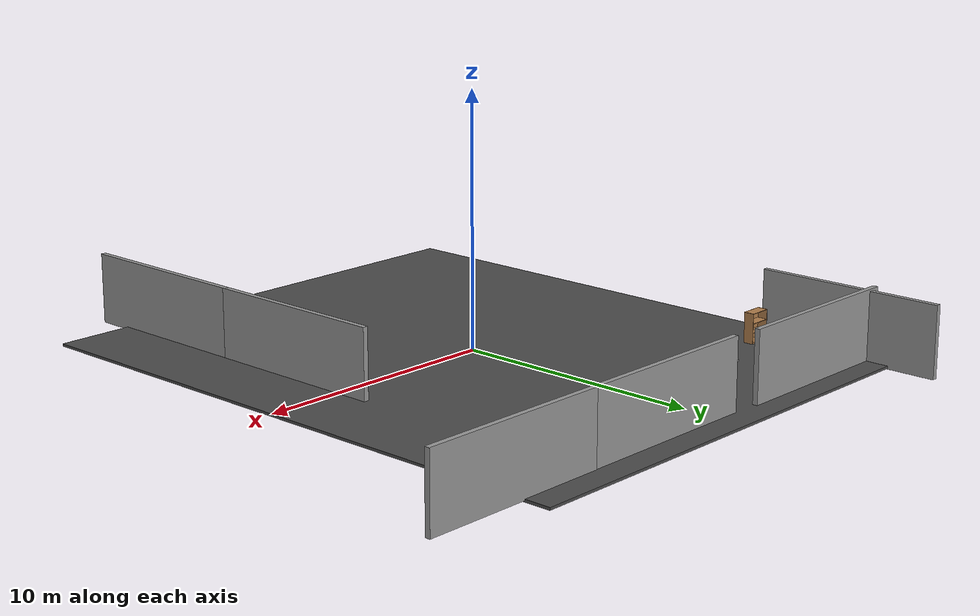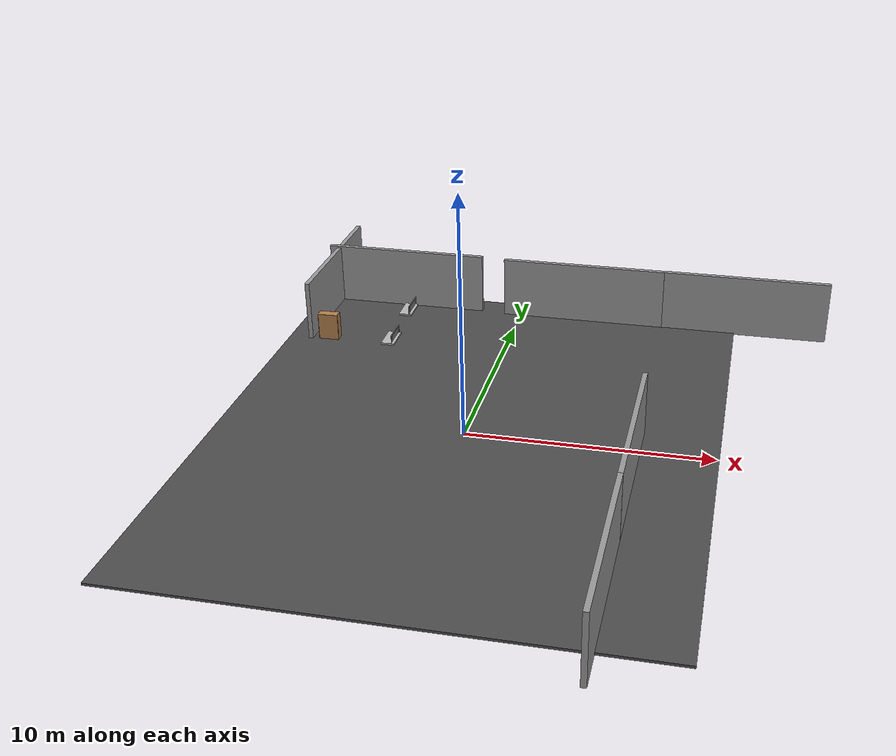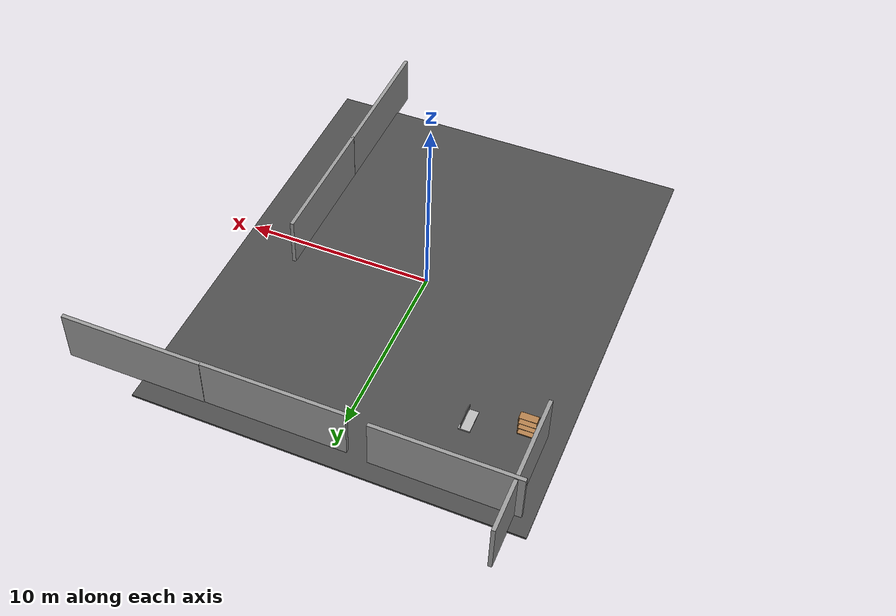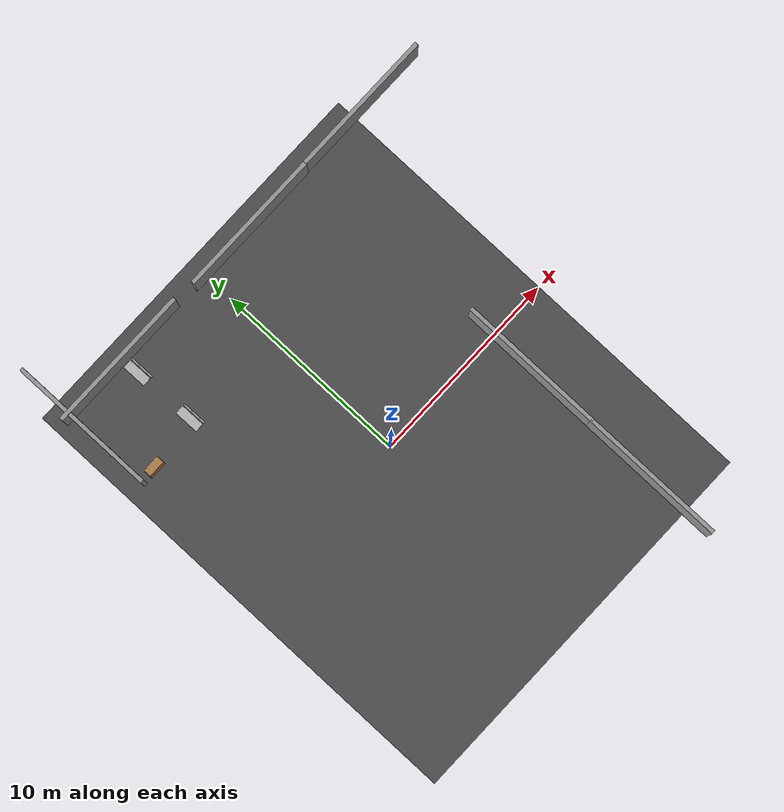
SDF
<sdf version="1.6">
 <world name="default">
  <light name="sun" type="directional">
   <pose>0 0 10 0 -0 0</pose>
   <diffuse>0.8 0.8 0.8 1</diffuse>
   <specular>0.1 0.1 0.1 1</specular>
   <attenuation>
    <range>1000</range>
    <constant>0.9</constant>
    <linear>0.01</linear>
    <quadratic>0.001</quadratic>
   </attenuation>
   <direction>-0.5 0.5 -1</direction>
  </light>
  <gravity>0 0 -9.8</gravity>
  <magnetic_field>6e-06 2.3e-05 -4.2e-05</magnetic_field>
  <atmosphere type="adiabatic"/>
  <physics name="default_physics" default="0" type="ode">
   <max_step_size>0.001</max_step_size>
   <real_time_factor>1</real_time_factor>
   <real_time_update_rate>1000</real_time_update_rate>
  </physics>
  <scene><ambient>0.4 0.4 0.4 1</ambient><background>0.7 0.7 0.7 1</background><shadows>1</shadows></scene>
  <spherical_coordinates>
   <surface_model>EARTH_WGS84</surface_model>
   <latitude_deg>0</latitude_deg>
   <longitude_deg>0</longitude_deg>
   <elevation>0</elevation>
   <heading_deg>0</heading_deg>
  </spherical_coordinates>
  <model name="asphalt_plane">
   <static>1</static>
   <link name="link">
    <collision name="collision"><geometry><box><size>20 24.57 0.1</size></box></geometry></collision>
    <visual name="visual">
     <cast_shadows>0</cast_shadows>
     <geometry><box><size>20 24.57 0.1</size></box></geometry>
     <material>
      <script>
       <uri>model://asphalt_plane/materials/scripts</uri>
       <uri>model://asphalt_plane/materials/textures</uri>
       <name>vrc/asphalt</name>
      </script>
     </material>
    </visual>
   </link>
   <pose>0.062111 0.331905 0 0 -0 0</pose>
  </model>
  <model name="grey_wall">
   <static>1</static>
   <link name="link">
    <pose>0 0 1.4 0 -0 0</pose>
    <collision name="collision"><geometry><box><size>7.5 0.2 2.8</size></box></geometry></collision>
    <visual name="visual">
     <cast_shadows>0</cast_shadows>
     <geometry><box><size>7.5 0.2 2.8</size></box></geometry>
     <material>
      <script>
       <uri>model://grey_wall/materials/scripts</uri>
       <uri>model://grey_wall/materials/textures</uri>
       <name>vrc/grey_wall</name>
      </script>
     </material>
    </visual>
   </link>
   <pose>-5.63183 11.6078 0 0 -0 0</pose>
  </model>
  <model name="grey_wall_0">
   <static>1</static>
   <link name="link">
    <pose>0 0 1.4 0 -0 0</pose>
    <collision name="collision"><geometry><box><size>7.5 0.2 2.8</size></box></geometry></collision>
    <visual name="visual">
     <cast_shadows>0</cast_shadows>
     <geometry><box><size>7.5 0.2 2.8</size></box></geometry>
     <material>
      <script>
       <uri>model://grey_wall/materials/scripts</uri>
       <uri>model://grey_wall/materials/textures</uri>
       <name>vrc/grey_wall</name>
      </script>
     </material>
    </visual>
   </link>
   <pose>-8.93334 10.7602 -0.07277 0 -0 1.57198</pose>
  </model>
  <model name="grey_wall_clone">
   <static>1</static>
   <link name="link">
    <pose>0 0 1.4 0 -0 0</pose>
    <collision name="collision"><geometry><box><size>7.5 0.2 2.8</size></box></geometry></collision>
    <visual name="visual">
     <cast_shadows>0</cast_shadows>
     <geometry><box><size>7.5 0.2 2.8</size></box></geometry>
     <material>
      <script>
       <uri>model://grey_wall/materials/scripts</uri>
       <uri>model://grey_wall/materials/textures</uri>
       <name>vrc/grey_wall</name>
      </script>
     </material>
    </visual>
   </link>
   <pose>2.95671 11.4917 0 0 -0 0</pose>
  </model>
  <model name="grey_wall_clone_0">
   <static>1</static>
   <link name="link">
    <pose>0 0 1.4 0 -0 0</pose>
    <collision name="collision"><geometry><box><size>7.5 0.2 2.8</size></box></geometry></collision>
    <visual name="visual">
     <cast_shadows>0</cast_shadows>
     <geometry><box><size>7.5 0.2 2.8</size></box></geometry>
     <material>
      <script>
       <uri>model://grey_wall/materials/scripts</uri>
       <uri>model://grey_wall/materials/textures</uri>
       <name>vrc/grey_wall</name>
      </script>
     </material>
    </visual>
   </link>
   <pose>10.4161 11.5119 0 0 -0 0</pose>
  </model>
  <model name="grey_wall_clone_0_clone">
   <static>1</static>
   <link name="link">
    <pose>0 0 1.4 0 -0 0</pose>
    <collision name="collision"><geometry><box><size>7.5 0.2 2.8</size></box></geometry></collision>
    <visual name="visual">
     <cast_shadows>0</cast_shadows>
     <geometry><box><size>7.5 0.2 2.8</size></box></geometry>
     <material>
      <script>
       <uri>model://grey_wall/materials/scripts</uri>
       <uri>model://grey_wall/materials/textures</uri>
       <name>vrc/grey_wall</name>
      </script>
     </material>
    </visual>
   </link>
   <pose>6.92346 -2.30034 -0.05478 0 0 -1.57273</pose>
  </model>
  <model name="grey_wall_clone_0_clone_clone">
   <static>1</static>
   <link name="link">
    <pose>0 0 1.4 0 -0 0</pose>
    <collision name="collision"><geometry><box><size>7.5 0.2 2.8</size></box></geometry></collision>
    <visual name="visual">
     <cast_shadows>0</cast_shadows>
     <geometry><box><size>7.5 0.2 2.8</size></box></geometry>
     <material>
      <script>
       <uri>model://grey_wall/materials/scripts</uri>
       <uri>model://grey_wall/materials/textures</uri>
       <name>vrc/grey_wall</name>
      </script>
     </material>
    </visual>
   </link>
   <pose>6.90602 -9.69741 -0.05478 0 0 -1.57273</pose>
  </model>
  <model name="frc2016_lowbar">
   <link name="base">
    <inertial>
     <mass>50</mass>
     <inertia>
      <ixx>0.035543</ixx>
      <ixy>0</ixy>
      <ixz>0</ixz>
      <iyy>0.134412</iyy>
      <iyz>0</iyz>
      <izz>0.165376</izz>
     </inertia>
    </inertial>
    <visual name="platform">
     <pose>0 0 0.039065 0 -0 0</pose>
     <geometry><box><size>1.26 0.5996 0.07813</size></box></geometry>
    </visual>
    <collision name="platform">
     <pose>0 0 0.039065 0 -0 0</pose>
     <geometry><box><size>1.27 0.6096 0.07813</size></box></geometry>
    </collision>
    <visual name="right_column">
     <pose>-0.57845 -0.18464 0.26863 0 -0 0</pose>
     <geometry><cylinder><radius>0.0254</radius><length>0.381</length></cylinder></geometry>
    </visual>
    <collision name="right_column">
     <pose>-0.57845 -0.18464 0.26863 0 -0 0</pose>
     <geometry><cylinder><radius>0.0254</radius><length>0.381</length></cylinder></geometry>
    </collision>
    <visual name="left_column">
     <pose>0.57845 -0.18464 0.26863 0 -0 0</pose>
     <geometry><cylinder><radius>0.0254</radius><length>0.381</length></cylinder></geometry>
    </visual>
    <collision name="left_column">
     <pose>0.57845 -0.18464 0.26863 0 -0 0</pose>
     <geometry><cylinder><radius>0.0254</radius><length>0.381</length></cylinder></geometry>
    </collision>
    <visual name="horizontal">
     <pose>0 -0.18464 0.43556 0 1.5707 0</pose>
     <geometry><cylinder><radius>0.0254</radius><length>1.2018</length></cylinder></geometry>
    </visual>
    <collision name="horizontal">
     <pose>0 -0.18464 0.43556 0 1.5707 0</pose>
     <geometry><cylinder><radius>0.0254</radius><length>1.2018</length></cylinder></geometry>
    </collision>
   </link>
   <link name="wall">
    <pose>0 -0.1778 0.24323 0 -0 0</pose>
    <inertial>
     <mass>1</mass>
     <inertia>
      <ixx>0.00774528</ixx>
      <ixy>0</ixy>
      <ixz>0</ixz>
      <iyy>0.116613</iyy>
      <iyz>0</iyz>
      <izz>0.108874</izz>
     </inertia>
    </inertial>
    <visual name="visual">
     <geometry><box><size>1.1176 0.00635 0.3</size></box></geometry>
     <material><ambient>0.46 0.46 0.46 1</ambient><diffuse>0.46 0.46 0.46 1</diffuse></material>
    </visual>
    <collision name="collision"><geometry><box><size>1.143 0.00635 0.3</size></box></geometry></collision>
   </link>
   <joint name="bar_joint" type="revolute">
    <pose>0 0 0.36378 0 -0 0</pose>
    <parent>base</parent>
    <child>wall</child>
    <axis>
     <xyz>1 0 0</xyz>
     <limit><lower>-1.5707</lower><upper>1.5707</upper></limit>
     <use_parent_model_frame>0</use_parent_model_frame>
     <dynamics><spring_reference>0</spring_reference><spring_stiffness>0</spring_stiffness></dynamics>
    </axis>
   </joint>
   <pose>-5.28663 7.63661 0.049992 7e-06 -2.5e-05 1.57941</pose>
  </model>
  <model name="frc2016_lowbar_clone">
   <link name="base">
    <inertial>
     <mass>50</mass>
     <inertia>
      <ixx>0.035543</ixx>
      <ixy>0</ixy>
      <ixz>0</ixz>
      <iyy>0.134412</iyy>
      <iyz>0</iyz>
      <izz>0.165376</izz>
     </inertia>
    </inertial>
    <visual name="platform">
     <pose>0 0 0.039065 0 -0 0</pose>
     <geometry><box><size>1.26 0.5996 0.07813</size></box></geometry>
    </visual>
    <collision name="platform">
     <pose>0 0 0.039065 0 -0 0</pose>
     <geometry><box><size>1.27 0.6096 0.07813</size></box></geometry>
    </collision>
    <visual name="right_column">
     <pose>-0.57845 -0.18464 0.26863 0 -0 0</pose>
     <geometry><cylinder><radius>0.0254</radius><length>0.381</length></cylinder></geometry>
    </visual>
    <collision name="right_column">
     <pose>-0.57845 -0.18464 0.26863 0 -0 0</pose>
     <geometry><cylinder><radius>0.0254</radius><length>0.381</length></cylinder></geometry>
    </collision>
    <visual name="left_column">
     <pose>0.57845 -0.18464 0.26863 0 -0 0</pose>
     <geometry><cylinder><radius>0.0254</radius><length>0.381</length></cylinder></geometry>
    </visual>
    <collision name="left_column">
     <pose>0.57845 -0.18464 0.26863 0 -0 0</pose>
     <geometry><cylinder><radius>0.0254</radius><length>0.381</length></cylinder></geometry>
    </collision>
    <visual name="horizontal">
     <pose>0 -0.18464 0.43556 0 1.5707 0</pose>
     <geometry><cylinder><radius>0.0254</radius><length>1.2018</length></cylinder></geometry>
    </visual>
    <collision name="horizontal">
     <pose>0 -0.18464 0.43556 0 1.5707 0</pose>
     <geometry><cylinder><radius>0.0254</radius><length>1.2018</length></cylinder></geometry>
    </collision>
   </link>
   <link name="wall">
    <pose>0 -0.1778 0.24323 0 -0 0</pose>
    <inertial>
     <mass>1</mass>
     <inertia>
      <ixx>0.00774528</ixx>
      <ixy>0</ixy>
      <ixz>0</ixz>
      <iyy>0.116613</iyy>
      <iyz>0</iyz>
      <izz>0.108874</izz>
     </inertia>
    </inertial>
    <visual name="visual">
     <geometry><box><size>1.1176 0.00635 0.3</size></box></geometry>
     <material><ambient>0.46 0.46 0.46 1</ambient><diffuse>0.46 0.46 0.46 1</diffuse></material>
    </visual>
    <collision name="collision"><geometry><box><size>1.143 0.00635 0.3</size></box></geometry></collision>
   </link>
   <joint name="bar_joint" type="revolute">
    <pose>0 0 0.36378 0 -0 0</pose>
    <parent>base</parent>
    <child>wall</child>
    <axis>
     <xyz>1 0 0</xyz>
     <limit><lower>-1.5707</lower><upper>1.5707</upper></limit>
     <use_parent_model_frame>0</use_parent_model_frame>
     <dynamics><spring_reference>0</spring_reference><spring_stiffness>0</spring_stiffness></dynamics>
    </axis>
   </joint>
   <pose>-5.38324 10.8489 0.049938 -0.000297 -4.2e-05 1.57923</pose>
  </model>
  <model name="bookshelf">
   <static>1</static>
   <link name="link">
    <inertial><mass>1</mass></inertial>
    <collision name="back">
     <pose>0 0.005 0.6 0 -0 0</pose>
     <geometry><box><size>0.9 0.01 1.2</size></box></geometry>
    </collision>
    <visual name="visual1">
     <pose>0 0.005 0.6 0 -0 0</pose>
     <geometry><box><size>0.9 0.01 1.2</size></box></geometry>
     <material>
      <script><uri>file://media/materials/scripts/gazebo.material</uri><name>Gazebo/Wood</name></script>
     </material>
    </visual>
    <collision name="left_side">
     <pose>0.45 -0.195 0.6 0 -0 0</pose>
     <geometry><box><size>0.02 0.4 1.2</size></box></geometry>
    </collision>
    <visual name="visual2">
     <pose>0.45 -0.195 0.6 0 -0 0</pose>
     <geometry><box><size>0.02 0.4 1.2</size></box></geometry>
     <material>
      <script><uri>file://media/materials/scripts/gazebo.material</uri><name>Gazebo/Wood</name></script>
     </material>
    </visual>
    <collision name="right_side">
     <pose>-0.45 -0.195 0.6 0 -0 0</pose>
     <geometry><box><size>0.02 0.4 1.2</size></box></geometry>
    </collision>
    <visual name="visual3">
     <pose>-0.45 -0.195 0.6 0 -0 0</pose>
     <geometry><box><size>0.02 0.4 1.2</size></box></geometry>
     <material>
      <script><uri>file://media/materials/scripts/gazebo.material</uri><name>Gazebo/Wood</name></script>
     </material>
    </visual>
    <collision name="bottom">
     <pose>0 -0.195 0.03 0 -0 0</pose>
     <geometry><box><size>0.88 0.4 0.06</size></box></geometry>
    </collision>
    <visual name="visual4">
     <pose>0 -0.195 0.03 0 -0 0</pose>
     <geometry><box><size>0.88 0.4 0.06</size></box></geometry>
     <material>
      <script><uri>file://media/materials/scripts/gazebo.material</uri><name>Gazebo/Wood</name></script>
     </material>
    </visual>
    <collision name="top">
     <pose>0 -0.195 1.19 0 -0 0</pose>
     <geometry><box><size>0.88 0.4 0.02</size></box></geometry>
    </collision>
    <visual name="visual5">
     <pose>0 -0.195 1.19 0 -0 0</pose>
     <geometry><box><size>0.88 0.4 0.02</size></box></geometry>
     <material>
      <script><uri>file://media/materials/scripts/gazebo.material</uri><name>Gazebo/Wood</name></script>
     </material>
    </visual>
    <collision name="low_shelf">
     <pose>0 -0.195 0.43 0 -0 0</pose>
     <geometry><box><size>0.88 0.4 0.02</size></box></geometry>
    </collision>
    <visual name="visual6">
     <pose>0 -0.195 0.43 0 -0 0</pose>
     <geometry><box><size>0.88 0.4 0.02</size></box></geometry>
     <material>
      <script><uri>file://media/materials/scripts/gazebo.material</uri><name>Gazebo/Wood</name></script>
     </material>
    </visual>
    <collision name="high_shelf">
     <pose>0 -0.195 0.8 0 -0 0</pose>
     <geometry><box><size>0.88 0.4 0.02</size></box></geometry>
    </collision>
    <visual name="visual7">
     <pose>0 -0.195 0.8 0 -0 0</pose>
     <geometry><box><size>0.88 0.4 0.02</size></box></geometry>
     <material>
      <script><uri>file://media/materials/scripts/gazebo.material</uri><name>Gazebo/Wood</name></script>
     </material>
    </visual>
   </link>
   <pose>-8.07112 7.0386 0.073 0 0 -3.12722</pose>
  </model>
 </world>
</sdf>
